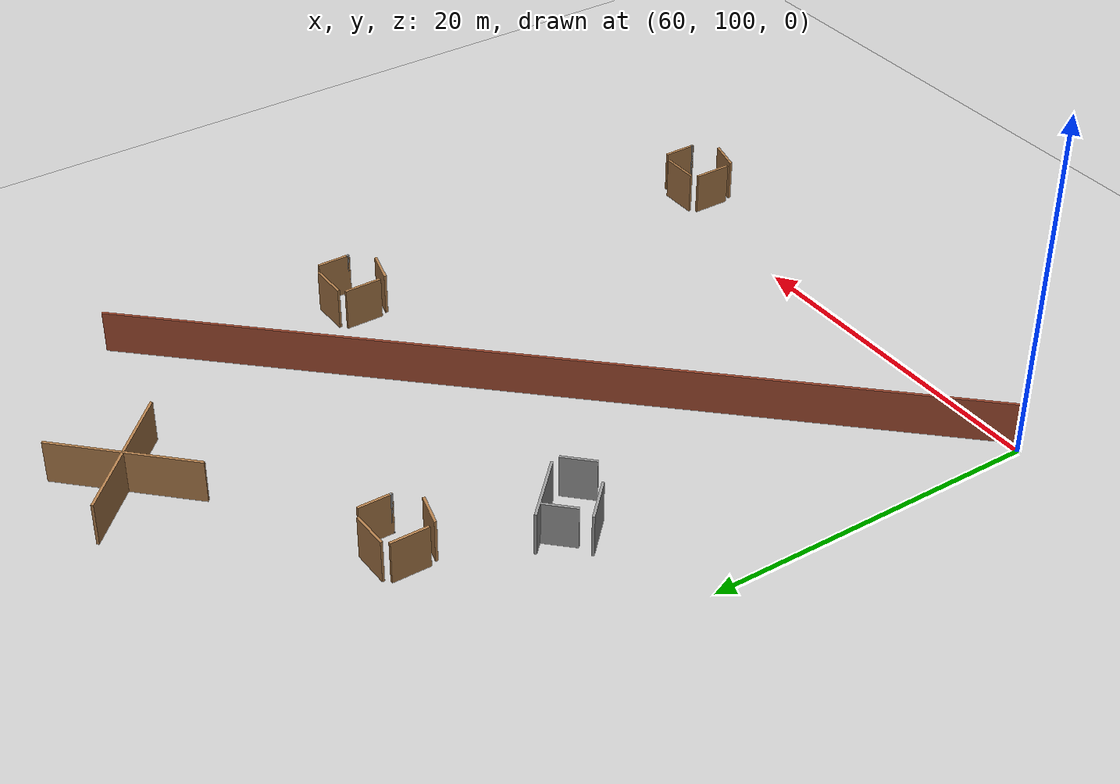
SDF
<sdf version="1.5">
 <world name="default">
  <model name="ground_plane">
   <static>1</static>
   <link name="link">
    <collision name="collision">
     <geometry><plane><normal>0 0 1</normal><size>100 100</size></plane></geometry>
     <surface><friction><ode><mu>100</mu><mu2>50</mu2></ode></friction></surface>
    </collision>
    <visual name="visual">
     <cast_shadows>0</cast_shadows>
     <geometry><plane><normal>0 0 1</normal><size>100 100</size></plane></geometry>
     <material>
      <script><uri>file://media/materials/scripts/gazebo.material</uri><name>Gazebo/Grey</name></script>
     </material>
    </visual>
   </link>
  </model>
  <model name="wall1_clone_3_clone">
   <pose>77.8001 117.545 0 0 -0 0.808575</pose>
   <link name="Wall_0">
    <collision name="Wall_0_Collision">
     <geometry><box><size>50 0.15 2.5</size></box></geometry>
     <pose>0 0 1.25 0 -0 0</pose>
    </collision>
    <visual name="Wall_0_Visual">
     <pose>0 0 1.25 0 -0 0</pose>
     <geometry><box><size>50 0.15 2.5</size></box></geometry>
     <material>
      <script><uri>file://media/materials/scripts/gazebo.material</uri><name>Gazebo/Bricks</name></script>
      <ambient>1 1 1 1</ambient>
     </material>
    </visual>
    <pose>1e-06 0 0 0 -0 3.14159</pose>
   </link>
   <static>1</static>
  </model>
  <model name="obs1_clone_7">
   <pose>71 131 0 0 -0 0</pose>
   <link name="Wall_10">
    <collision name="Wall_10_Collision">
     <geometry><box><size>2 0.15 2.5</size></box></geometry>
     <pose>0 0 1.25 0 -0 0</pose>
    </collision>
    <visual name="Wall_10_Visual">
     <pose>0 0 1.25 0 -0 0</pose>
     <geometry><box><size>2 0.15 2.5</size></box></geometry>
     <material>
      <script><uri>file://media/materials/scripts/gazebo.material</uri><name>Gazebo/Wood</name></script>
      <ambient>1 1 1 1</ambient>
     </material>
    </visual>
    <pose>-0.505188 -1.46687 0 0 0 -0.261799</pose>
   </link>
   <link name="Wall_2">
    <collision name="Wall_2_Collision">
     <geometry><box><size>2.25 0.15 2.5</size></box></geometry>
     <pose>0 0 1.25 0 -0 0</pose>
    </collision>
    <visual name="Wall_2_Visual">
     <pose>0 0 1.25 0 -0 0</pose>
     <geometry><box><size>2.25 0.15 2.5</size></box></geometry>
     <material>
      <script><uri>file://media/materials/scripts/gazebo.material</uri><name>Gazebo/Wood</name></script>
      <ambient>1 1 1 1</ambient>
     </material>
    </visual>
    <pose>-1.58039 0.313508 0 0 0 -1.5708</pose>
   </link>
   <link name="Wall_5">
    <collision name="Wall_5_Collision">
     <geometry><box><size>2.25 0.15 2.5</size></box></geometry>
     <pose>0 0 1.25 0 -0 0</pose>
    </collision>
    <visual name="Wall_5_Visual">
     <pose>0 0 1.25 0 -0 0</pose>
     <geometry><box><size>2.25 0.15 2.5</size></box></geometry>
     <material>
      <script><uri>file://media/materials/scripts/gazebo.material</uri><name>Gazebo/Wood</name></script>
      <ambient>1 1 1 1</ambient>
     </material>
    </visual>
    <pose>-0.185262 1.72313 0 0 -0 0</pose>
   </link>
   <link name="Wall_7">
    <collision name="Wall_7_Collision">
     <geometry><box><size>2 0.15 2.5</size></box></geometry>
     <pose>0 0 1.25 0 -0 0</pose>
    </collision>
    <visual name="Wall_7_Visual">
     <pose>0 0 1.25 0 -0 0</pose>
     <geometry><box><size>2 0.15 2.5</size></box></geometry>
     <material>
      <script><uri>file://media/materials/scripts/gazebo.material</uri><name>Gazebo/Wood</name></script>
      <ambient>1 1 1 1</ambient>
     </material>
    </visual>
    <pose>1.58039 0.398833 0 0 0 -1.5708</pose>
   </link>
   <link name="Wall_8">
    <collision name="Wall_8_Collision">
     <geometry><box><size>0.15 0.15 2.5</size></box></geometry>
     <pose>0 0 1.25 0 -0 0</pose>
    </collision>
    <visual name="Wall_8_Visual">
     <pose>0 0 1.25 0 -0 0</pose>
     <geometry><box><size>0.15 0.15 2.5</size></box></geometry>
     <material>
      <script><uri>file://media/materials/scripts/gazebo.material</uri><name>Gazebo/Grey</name></script>
      <ambient>1 1 1 1</ambient>
     </material>
    </visual>
    <pose>1.58039 -0.526167 0 0 -0 0</pose>
   </link>
   <static>1</static>
  </model>
  <model name="obs1_clone_8">
   <pose>90 98 0 0 -0 0</pose>
   <link name="Wall_10">
    <collision name="Wall_10_Collision">
     <geometry><box><size>2 0.15 2.5</size></box></geometry>
     <pose>0 0 1.25 0 -0 0</pose>
    </collision>
    <visual name="Wall_10_Visual">
     <pose>0 0 1.25 0 -0 0</pose>
     <geometry><box><size>2 0.15 2.5</size></box></geometry>
     <material>
      <script><uri>file://media/materials/scripts/gazebo.material</uri><name>Gazebo/Wood</name></script>
      <ambient>1 1 1 1</ambient>
     </material>
    </visual>
    <pose>-0.505188 -1.46687 0 0 0 -0.261799</pose>
   </link>
   <link name="Wall_2">
    <collision name="Wall_2_Collision">
     <geometry><box><size>2.25 0.15 2.5</size></box></geometry>
     <pose>0 0 1.25 0 -0 0</pose>
    </collision>
    <visual name="Wall_2_Visual">
     <pose>0 0 1.25 0 -0 0</pose>
     <geometry><box><size>2.25 0.15 2.5</size></box></geometry>
     <material>
      <script><uri>file://media/materials/scripts/gazebo.material</uri><name>Gazebo/Wood</name></script>
      <ambient>1 1 1 1</ambient>
     </material>
    </visual>
    <pose>-1.58039 0.313508 0 0 0 -1.5708</pose>
   </link>
   <link name="Wall_5">
    <collision name="Wall_5_Collision">
     <geometry><box><size>2.25 0.15 2.5</size></box></geometry>
     <pose>0 0 1.25 0 -0 0</pose>
    </collision>
    <visual name="Wall_5_Visual">
     <pose>0 0 1.25 0 -0 0</pose>
     <geometry><box><size>2.25 0.15 2.5</size></box></geometry>
     <material>
      <script><uri>file://media/materials/scripts/gazebo.material</uri><name>Gazebo/Wood</name></script>
      <ambient>1 1 1 1</ambient>
     </material>
    </visual>
    <pose>-0.185262 1.72313 0 0 -0 0</pose>
   </link>
   <link name="Wall_7">
    <collision name="Wall_7_Collision">
     <geometry><box><size>2 0.15 2.5</size></box></geometry>
     <pose>0 0 1.25 0 -0 0</pose>
    </collision>
    <visual name="Wall_7_Visual">
     <pose>0 0 1.25 0 -0 0</pose>
     <geometry><box><size>2 0.15 2.5</size></box></geometry>
     <material>
      <script><uri>file://media/materials/scripts/gazebo.material</uri><name>Gazebo/Wood</name></script>
      <ambient>1 1 1 1</ambient>
     </material>
    </visual>
    <pose>1.58039 0.398833 0 0 0 -1.5708</pose>
   </link>
   <link name="Wall_8">
    <collision name="Wall_8_Collision">
     <geometry><box><size>0.15 0.15 2.5</size></box></geometry>
     <pose>0 0 1.25 0 -0 0</pose>
    </collision>
    <visual name="Wall_8_Visual">
     <pose>0 0 1.25 0 -0 0</pose>
     <geometry><box><size>0.15 0.15 2.5</size></box></geometry>
     <material>
      <script><uri>file://media/materials/scripts/gazebo.material</uri><name>Gazebo/Grey</name></script>
      <ambient>1 1 1 1</ambient>
     </material>
    </visual>
    <pose>1.58039 -0.526167 0 0 -0 0</pose>
   </link>
   <static>1</static>
  </model>
  <model name="obs1_clone_19">
   <pose>91 122 0 0 -0 0</pose>
   <link name="Wall_10">
    <collision name="Wall_10_Collision">
     <geometry><box><size>2 0.15 2.5</size></box></geometry>
     <pose>0 0 1.25 0 -0 0</pose>
    </collision>
    <visual name="Wall_10_Visual">
     <pose>0 0 1.25 0 -0 0</pose>
     <geometry><box><size>2 0.15 2.5</size></box></geometry>
     <material>
      <script><uri>file://media/materials/scripts/gazebo.material</uri><name>Gazebo/Wood</name></script>
      <ambient>1 1 1 1</ambient>
     </material>
    </visual>
    <pose>-0.505188 -1.46687 0 0 0 -0.261799</pose>
   </link>
   <link name="Wall_2">
    <collision name="Wall_2_Collision">
     <geometry><box><size>2.25 0.15 2.5</size></box></geometry>
     <pose>0 0 1.25 0 -0 0</pose>
    </collision>
    <visual name="Wall_2_Visual">
     <pose>0 0 1.25 0 -0 0</pose>
     <geometry><box><size>2.25 0.15 2.5</size></box></geometry>
     <material>
      <script><uri>file://media/materials/scripts/gazebo.material</uri><name>Gazebo/Wood</name></script>
      <ambient>1 1 1 1</ambient>
     </material>
    </visual>
    <pose>-1.58039 0.313508 0 0 0 -1.5708</pose>
   </link>
   <link name="Wall_5">
    <collision name="Wall_5_Collision">
     <geometry><box><size>2.25 0.15 2.5</size></box></geometry>
     <pose>0 0 1.25 0 -0 0</pose>
    </collision>
    <visual name="Wall_5_Visual">
     <pose>0 0 1.25 0 -0 0</pose>
     <geometry><box><size>2.25 0.15 2.5</size></box></geometry>
     <material>
      <script><uri>file://media/materials/scripts/gazebo.material</uri><name>Gazebo/Wood</name></script>
      <ambient>1 1 1 1</ambient>
     </material>
    </visual>
    <pose>-0.185262 1.72313 0 0 -0 0</pose>
   </link>
   <link name="Wall_7">
    <collision name="Wall_7_Collision">
     <geometry><box><size>2 0.15 2.5</size></box></geometry>
     <pose>0 0 1.25 0 -0 0</pose>
    </collision>
    <visual name="Wall_7_Visual">
     <pose>0 0 1.25 0 -0 0</pose>
     <geometry><box><size>2 0.15 2.5</size></box></geometry>
     <material>
      <script><uri>file://media/materials/scripts/gazebo.material</uri><name>Gazebo/Wood</name></script>
      <ambient>1 1 1 1</ambient>
     </material>
    </visual>
    <pose>1.58039 0.398833 0 0 0 -1.5708</pose>
   </link>
   <link name="Wall_8">
    <collision name="Wall_8_Collision">
     <geometry><box><size>0.15 0.15 2.5</size></box></geometry>
     <pose>0 0 1.25 0 -0 0</pose>
    </collision>
    <visual name="Wall_8_Visual">
     <pose>0 0 1.25 0 -0 0</pose>
     <geometry><box><size>0.15 0.15 2.5</size></box></geometry>
     <material>
      <script><uri>file://media/materials/scripts/gazebo.material</uri><name>Gazebo/Grey</name></script>
      <ambient>1 1 1 1</ambient>
     </material>
    </visual>
    <pose>1.58039 -0.526167 0 0 -0 0</pose>
   </link>
   <static>1</static>
  </model>
  <model name="obs2_5_clone_clone_clone">
   <pose>68 123 0 0 -0 0</pose>
   <link name="Wall_0">
    <collision name="Wall_0_Collision">
     <geometry><box><size>2 0.15 2.5</size></box></geometry>
     <pose>0 0 1.25 0 -0 0</pose>
    </collision>
    <visual name="Wall_0_Visual">
     <pose>0 0 1.25 0 -0 0</pose>
     <geometry><box><size>2 0.15 2.5</size></box></geometry>
     <material>
      <script><uri>file://media/materials/scripts/gazebo.material</uri><name>Gazebo/Grey</name></script>
      <ambient>1 1 1 1</ambient>
     </material>
    </visual>
    <pose>-0.796332 1.10862 0 0 -0 0.785398</pose>
   </link>
   <link name="Wall_2">
    <collision name="Wall_2_Collision">
     <geometry><box><size>4.25 0.15 2.5</size></box></geometry>
     <pose>0 0 1.25 0 -0 0</pose>
    </collision>
    <visual name="Wall_2_Visual">
     <pose>0 0 1.25 0 -0 0</pose>
     <geometry><box><size>4.25 0.15 2.5</size></box></geometry>
     <material>
      <script><uri>file://media/materials/scripts/gazebo.material</uri><name>Gazebo/Grey</name></script>
      <ambient>1 1 1 1</ambient>
     </material>
    </visual>
    <pose>0.773928 0.982661 0 0 0 -0.785398</pose>
   </link>
   <link name="Wall_4">
    <collision name="Wall_4_Collision">
     <geometry><box><size>2.75 0.15 2.5</size></box></geometry>
     <pose>0 0 1.25 0 -0 0</pose>
    </collision>
    <visual name="Wall_4_Visual">
     <pose>0 0 1.25 0 -0 0</pose>
     <geometry><box><size>2.75 0.15 2.5</size></box></geometry>
     <material>
      <script><uri>file://media/materials/scripts/gazebo.material</uri><name>Gazebo/Grey</name></script>
      <ambient>1 1 1 1</ambient>
     </material>
    </visual>
    <pose>-1.45556 -0.740711 0 0 0 -0.785398</pose>
   </link>
   <link name="Wall_6">
    <collision name="Wall_6_Collision">
     <geometry><box><size>2 0.15 2.5</size></box></geometry>
     <pose>0 0 1.25 0 -0 0</pose>
    </collision>
    <visual name="Wall_6_Visual">
     <pose>0 0 1.25 0 -0 0</pose>
     <geometry><box><size>2 0.15 2.5</size></box></geometry>
     <material>
      <script><uri>file://media/materials/scripts/gazebo.material</uri><name>Gazebo/Grey</name></script>
      <ambient>1 1 1 1</ambient>
     </material>
    </visual>
    <pose>1.72073 -1.77816 0 0 -0 0.785398</pose>
   </link>
   <static>1</static>
  </model>
  <model name="obs3_0_clone">
   <pose>83 140 0 0 -0 0</pose>
   <link name="Wall_0">
    <collision name="Wall_0_Collision">
     <geometry><box><size>8.63528 0.15 2.5</size></box></geometry>
     <pose>0 0 1.25 0 -0 0</pose>
    </collision>
    <visual name="Wall_0_Visual">
     <pose>0 0 1.25 0 -0 0</pose>
     <geometry><box><size>8.63528 0.15 2.5</size></box></geometry>
     <material>
      <script><uri>file://media/materials/scripts/gazebo.material</uri><name>Gazebo/Wood</name></script>
      <ambient>1 1 1 1</ambient>
     </material>
    </visual>
    <pose>0 0 0 0 0 -0.785398</pose>
   </link>
   <link name="Wall_2">
    <collision name="Wall_2_Collision">
     <geometry><box><size>8.63528 0.15 2.5</size></box></geometry>
     <pose>0 0 1.25 0 -0 0</pose>
    </collision>
    <visual name="Wall_2_Visual">
     <pose>0 0 1.25 0 -0 0</pose>
     <geometry><box><size>8.63528 0.15 2.5</size></box></geometry>
     <material>
      <script><uri>file://media/materials/scripts/gazebo.material</uri><name>Gazebo/Wood</name></script>
      <ambient>1 1 1 1</ambient>
     </material>
    </visual>
    <pose>0 0 0 0 0 -2.35619</pose>
   </link>
   <static>1</static>
  </model>
 </world>
</sdf>
